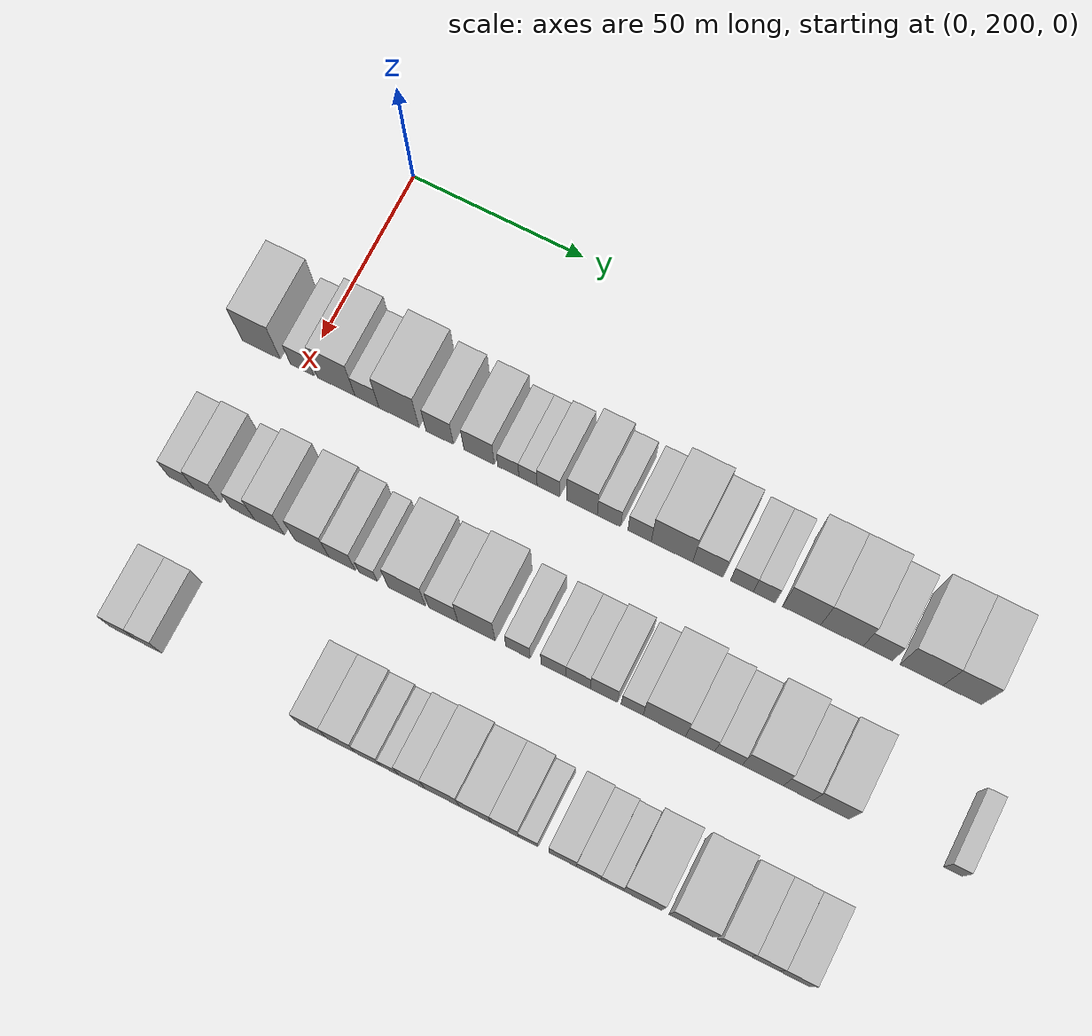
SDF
<sdf version="1.6">
 <world name="default">
  <model name="building_63">
   <static>1</static>
   <pose>50.0000 187.7218 0 0.000000 0.000000 0.000000</pose>
   <link name="link">
    <pose>0 0 12.00 0 0 0</pose>
    <collision name="collision"><geometry><box><size>20.0000 11.0932 24.0000</size></box></geometry></collision>
    <visual name="visual">
     <cast_shadows>0</cast_shadows>
     <geometry><box><size>20.0000 11.0932 24.0000</size></box></geometry>
     <material>
      <script>
       <uri>model://HANNAS_wall/materials/scripts</uri>
       <uri>model://HANNAS_wall/materials/textures</uri>
       <name>vrc/HANNAS_wall</name>
      </script>
     </material>
    </visual>
   </link>
  </model>
  <model name="building_64">
   <static>1</static>
   <pose>50.0000 199.6790 0 0.000000 0.000000 0.000000</pose>
   <link name="link">
    <pose>0 0 7.50 0 0 0</pose>
    <collision name="collision"><geometry><box><size>20.0000 6.8211 15.0000</size></box></geometry></collision>
    <visual name="visual">
     <cast_shadows>0</cast_shadows>
     <geometry><box><size>20.0000 6.8211 15.0000</size></box></geometry>
     <material>
      <script>
       <uri>model://HANNAS_wall/materials/scripts</uri>
       <uri>model://HANNAS_wall/materials/textures</uri>
       <name>vrc/HANNAS_wall</name>
      </script>
     </material>
    </visual>
   </link>
  </model>
  <model name="building_65">
   <static>1</static>
   <pose>50.0000 209.5486 0 0.000000 0.000000 0.000000</pose>
   <link name="link">
    <pose>0 0 12.00 0 0 0</pose>
    <collision name="collision"><geometry><box><size>20.0000 10.9182 24.0000</size></box></geometry></collision>
    <visual name="visual">
     <cast_shadows>0</cast_shadows>
     <geometry><box><size>20.0000 10.9182 24.0000</size></box></geometry>
     <material>
      <script>
       <uri>model://HANNAS_wall/materials/scripts</uri>
       <uri>model://HANNAS_wall/materials/textures</uri>
       <name>vrc/HANNAS_wall</name>
      </script>
     </material>
    </visual>
   </link>
  </model>
  <model name="building_66">
   <static>1</static>
   <pose>50.0000 218.4576 0 0.000000 0.000000 0.000000</pose>
   <link name="link">
    <pose>0 0 7.50 0 0 0</pose>
    <collision name="collision"><geometry><box><size>20.0000 6.8998 15.0000</size></box></geometry></collision>
    <visual name="visual">
     <cast_shadows>0</cast_shadows>
     <geometry><box><size>20.0000 6.8998 15.0000</size></box></geometry>
     <material>
      <script>
       <uri>model://HANNAS_wall/materials/scripts</uri>
       <uri>model://HANNAS_wall/materials/textures</uri>
       <name>vrc/HANNAS_wall</name>
      </script>
     </material>
    </visual>
   </link>
  </model>
  <model name="building_67">
   <static>1</static>
   <pose>50.0000 227.6946 0 0.000000 0.000000 0.000000</pose>
   <link name="link">
    <pose>0 0 12.00 0 0 0</pose>
    <collision name="collision"><geometry><box><size>20.0000 11.5742 24.0000</size></box></geometry></collision>
    <visual name="visual">
     <cast_shadows>0</cast_shadows>
     <geometry><box><size>20.0000 11.5742 24.0000</size></box></geometry>
     <material>
      <script>
       <uri>model://HANNAS_wall/materials/scripts</uri>
       <uri>model://HANNAS_wall/materials/textures</uri>
       <name>vrc/HANNAS_wall</name>
      </script>
     </material>
    </visual>
   </link>
  </model>
  <model name="building_68">
   <static>1</static>
   <pose>50.0000 239.4182 0 0.000000 0.000000 0.000000</pose>
   <link name="link">
    <pose>0 0 9.00 0 0 0</pose>
    <collision name="collision"><geometry><box><size>20.0000 7.8730 18.0000</size></box></geometry></collision>
    <visual name="visual">
     <cast_shadows>0</cast_shadows>
     <geometry><box><size>20.0000 7.8730 18.0000</size></box></geometry>
     <material>
      <script>
       <uri>model://HANNAS_wall/materials/scripts</uri>
       <uri>model://HANNAS_wall/materials/textures</uri>
       <name>vrc/HANNAS_wall</name>
      </script>
     </material>
    </visual>
   </link>
  </model>
  <model name="building_69">
   <static>1</static>
   <pose>50.0000 250.6943 0 0.000000 0.000000 0.000000</pose>
   <link name="link">
    <pose>0 0 9.00 0 0 0</pose>
    <collision name="collision"><geometry><box><size>20.0000 8.6792 18.0000</size></box></geometry></collision>
    <visual name="visual">
     <cast_shadows>0</cast_shadows>
     <geometry><box><size>20.0000 8.6792 18.0000</size></box></geometry>
     <material>
      <script>
       <uri>model://HANNAS_wall/materials/scripts</uri>
       <uri>model://HANNAS_wall/materials/textures</uri>
       <name>vrc/HANNAS_wall</name>
      </script>
     </material>
    </visual>
   </link>
  </model>
  <model name="building_70">
   <static>1</static>
   <pose>50.0000 259.0198 0 0.000000 0.000000 0.000000</pose>
   <link name="link">
    <pose>0 0 6.00 0 0 0</pose>
    <collision name="collision"><geometry><box><size>20.0000 5.9718 12.0000</size></box></geometry></collision>
    <visual name="visual">
     <cast_shadows>0</cast_shadows>
     <geometry><box><size>20.0000 5.9718 12.0000</size></box></geometry>
     <material>
      <script>
       <uri>model://HANNAS_wall/materials/scripts</uri>
       <uri>model://HANNAS_wall/materials/textures</uri>
       <name>vrc/HANNAS_wall</name>
      </script>
     </material>
    </visual>
   </link>
  </model>
  <model name="building_71">
   <static>1</static>
   <pose>50.0000 264.5907 0 0.000000 0.000000 0.000000</pose>
   <link name="link">
    <pose>0 0 6.00 0 0 0</pose>
    <collision name="collision"><geometry><box><size>20.0000 5.1698 12.0000</size></box></geometry></collision>
    <visual name="visual">
     <cast_shadows>0</cast_shadows>
     <geometry><box><size>20.0000 5.1698 12.0000</size></box></geometry>
     <material>
      <script>
       <uri>model://HANNAS_wall/materials/scripts</uri>
       <uri>model://HANNAS_wall/materials/textures</uri>
       <name>vrc/HANNAS_wall</name>
      </script>
     </material>
    </visual>
   </link>
  </model>
  <model name="building_72">
   <static>1</static>
   <pose>50.0000 270.3763 0 0.000000 0.000000 0.000000</pose>
   <link name="link">
    <pose>0 0 7.50 0 0 0</pose>
    <collision name="collision"><geometry><box><size>20.0000 6.4015 15.0000</size></box></geometry></collision>
    <visual name="visual">
     <cast_shadows>0</cast_shadows>
     <geometry><box><size>20.0000 6.4015 15.0000</size></box></geometry>
     <material>
      <script>
       <uri>model://HANNAS_wall/materials/scripts</uri>
       <uri>model://HANNAS_wall/materials/textures</uri>
       <name>vrc/HANNAS_wall</name>
      </script>
     </material>
    </visual>
   </link>
  </model>
  <model name="building_73">
   <static>1</static>
   <pose>50.0000 279.8585 0 0.000000 0.000000 0.000000</pose>
   <link name="link">
    <pose>0 0 10.50 0 0 0</pose>
    <collision name="collision"><geometry><box><size>20.0000 8.5629 21.0000</size></box></geometry></collision>
    <visual name="visual">
     <cast_shadows>0</cast_shadows>
     <geometry><box><size>20.0000 8.5629 21.0000</size></box></geometry>
     <material>
      <script>
       <uri>model://HANNAS_wall/materials/scripts</uri>
       <uri>model://HANNAS_wall/materials/textures</uri>
       <name>vrc/HANNAS_wall</name>
      </script>
     </material>
    </visual>
   </link>
  </model>
  <model name="building_74">
   <static>1</static>
   <pose>50.0000 287.4294 0 0.000000 0.000000 0.000000</pose>
   <link name="link">
    <pose>0 0 7.50 0 0 0</pose>
    <collision name="collision"><geometry><box><size>20.0000 6.5790 15.0000</size></box></geometry></collision>
    <visual name="visual">
     <cast_shadows>0</cast_shadows>
     <geometry><box><size>20.0000 6.5790 15.0000</size></box></geometry>
     <material>
      <script>
       <uri>model://HANNAS_wall/materials/scripts</uri>
       <uri>model://HANNAS_wall/materials/textures</uri>
       <name>vrc/HANNAS_wall</name>
      </script>
     </material>
    </visual>
   </link>
  </model>
  <model name="building_75">
   <static>1</static>
   <pose>50.0000 295.9694 0 0.000000 0.000000 0.000000</pose>
   <link name="link">
    <pose>0 0 7.50 0 0 0</pose>
    <collision name="collision"><geometry><box><size>20.0000 6.5010 15.0000</size></box></geometry></collision>
    <visual name="visual">
     <cast_shadows>0</cast_shadows>
     <geometry><box><size>20.0000 6.5010 15.0000</size></box></geometry>
     <material>
      <script>
       <uri>model://HANNAS_wall/materials/scripts</uri>
       <uri>model://HANNAS_wall/materials/textures</uri>
       <name>vrc/HANNAS_wall</name>
      </script>
     </material>
    </visual>
   </link>
  </model>
  <model name="building_76">
   <static>1</static>
   <pose>50.0000 305.0215 0 0.000000 0.000000 0.000000</pose>
   <link name="link">
    <pose>0 0 12.00 0 0 0</pose>
    <collision name="collision"><geometry><box><size>20.0000 11.6031 24.0000</size></box></geometry></collision>
    <visual name="visual">
     <cast_shadows>0</cast_shadows>
     <geometry><box><size>20.0000 11.6031 24.0000</size></box></geometry>
     <material>
      <script>
       <uri>model://HANNAS_wall/materials/scripts</uri>
       <uri>model://HANNAS_wall/materials/textures</uri>
       <name>vrc/HANNAS_wall</name>
      </script>
     </material>
    </visual>
   </link>
  </model>
  <model name="building_77">
   <static>1</static>
   <pose>50.0000 315.0398 0 0.000000 0.000000 0.000000</pose>
   <link name="link">
    <pose>0 0 9.00 0 0 0</pose>
    <collision name="collision"><geometry><box><size>20.0000 8.4336 18.0000</size></box></geometry></collision>
    <visual name="visual">
     <cast_shadows>0</cast_shadows>
     <geometry><box><size>20.0000 8.4336 18.0000</size></box></geometry>
     <material>
      <script>
       <uri>model://HANNAS_wall/materials/scripts</uri>
       <uri>model://HANNAS_wall/materials/textures</uri>
       <name>vrc/HANNAS_wall</name>
      </script>
     </material>
    </visual>
   </link>
  </model>
  <model name="building_78">
   <static>1</static>
   <pose>50.0000 324.4314 0 0.000000 0.000000 0.000000</pose>
   <link name="link">
    <pose>0 0 7.50 0 0 0</pose>
    <collision name="collision"><geometry><box><size>20.0000 6.3495 15.0000</size></box></geometry></collision>
    <visual name="visual">
     <cast_shadows>0</cast_shadows>
     <geometry><box><size>20.0000 6.3495 15.0000</size></box></geometry>
     <material>
      <script>
       <uri>model://HANNAS_wall/materials/scripts</uri>
       <uri>model://HANNAS_wall/materials/textures</uri>
       <name>vrc/HANNAS_wall</name>
      </script>
     </material>
    </visual>
   </link>
  </model>
  <model name="building_79">
   <static>1</static>
   <pose>50.0000 330.6228 0 0.000000 0.000000 0.000000</pose>
   <link name="link">
    <pose>0 0 7.50 0 0 0</pose>
    <collision name="collision"><geometry><box><size>20.0000 6.0332 15.0000</size></box></geometry></collision>
    <visual name="visual">
     <cast_shadows>0</cast_shadows>
     <geometry><box><size>20.0000 6.0332 15.0000</size></box></geometry>
     <material>
      <script>
       <uri>model://HANNAS_wall/materials/scripts</uri>
       <uri>model://HANNAS_wall/materials/textures</uri>
       <name>vrc/HANNAS_wall</name>
      </script>
     </material>
    </visual>
   </link>
  </model>
  <model name="building_80">
   <static>1</static>
   <pose>50.0000 340.8637 0 0.000000 0.000000 0.000000</pose>
   <link name="link">
    <pose>0 0 12.00 0 0 0</pose>
    <collision name="collision"><geometry><box><size>20.0000 10.4486 24.0000</size></box></geometry></collision>
    <visual name="visual">
     <cast_shadows>0</cast_shadows>
     <geometry><box><size>20.0000 10.4486 24.0000</size></box></geometry>
     <material>
      <script>
       <uri>model://HANNAS_wall/materials/scripts</uri>
       <uri>model://HANNAS_wall/materials/textures</uri>
       <name>vrc/HANNAS_wall</name>
      </script>
     </material>
    </visual>
   </link>
  </model>
  <model name="building_81">
   <static>1</static>
   <pose>50.0000 351.8807 0 0.000000 0.000000 0.000000</pose>
   <link name="link">
    <pose>0 0 12.00 0 0 0</pose>
    <collision name="collision"><geometry><box><size>20.0000 11.5853 24.0000</size></box></geometry></collision>
    <visual name="visual">
     <cast_shadows>0</cast_shadows>
     <geometry><box><size>20.0000 11.5853 24.0000</size></box></geometry>
     <material>
      <script>
       <uri>model://HANNAS_wall/materials/scripts</uri>
       <uri>model://HANNAS_wall/materials/textures</uri>
       <name>vrc/HANNAS_wall</name>
      </script>
     </material>
    </visual>
   </link>
  </model>
  <model name="building_82">
   <static>1</static>
   <pose>50.0000 361.7056 0 0.000000 0.000000 0.000000</pose>
   <link name="link">
    <pose>0 0 9.00 0 0 0</pose>
    <collision name="collision"><geometry><box><size>20.0000 8.0645 18.0000</size></box></geometry></collision>
    <visual name="visual">
     <cast_shadows>0</cast_shadows>
     <geometry><box><size>20.0000 8.0645 18.0000</size></box></geometry>
     <material>
      <script>
       <uri>model://HANNAS_wall/materials/scripts</uri>
       <uri>model://HANNAS_wall/materials/textures</uri>
       <name>vrc/HANNAS_wall</name>
      </script>
     </material>
    </visual>
   </link>
  </model>
  <model name="building_83">
   <static>1</static>
   <pose>50.0000 373.5351 0 0.000000 0.000000 0.000000</pose>
   <link name="link">
    <pose>0 0 12.00 0 0 0</pose>
    <collision name="collision"><geometry><box><size>20.0000 11.5946 24.0000</size></box></geometry></collision>
    <visual name="visual">
     <cast_shadows>0</cast_shadows>
     <geometry><box><size>20.0000 11.5946 24.0000</size></box></geometry>
     <material>
      <script>
       <uri>model://HANNAS_wall/materials/scripts</uri>
       <uri>model://HANNAS_wall/materials/textures</uri>
       <name>vrc/HANNAS_wall</name>
      </script>
     </material>
    </visual>
   </link>
  </model>
  <model name="building_84">
   <static>1</static>
   <pose>50.0000 384.5345 0 0.000000 0.000000 0.000000</pose>
   <link name="link">
    <pose>0 0 12.00 0 0 0</pose>
    <collision name="collision"><geometry><box><size>20.0000 10.4040 24.0000</size></box></geometry></collision>
    <visual name="visual">
     <cast_shadows>0</cast_shadows>
     <geometry><box><size>20.0000 10.4040 24.0000</size></box></geometry>
     <material>
      <script>
       <uri>model://HANNAS_wall/materials/scripts</uri>
       <uri>model://HANNAS_wall/materials/textures</uri>
       <name>vrc/HANNAS_wall</name>
      </script>
     </material>
    </visual>
   </link>
  </model>
  <model name="building_147">
   <static>1</static>
   <pose>90.0000 186.9736 0 0.000000 0.000000 0.000000</pose>
   <link name="link">
    <pose>0 0 7.50 0 0 0</pose>
    <collision name="collision"><geometry><box><size>20.0000 7.4780 15.0000</size></box></geometry></collision>
    <visual name="visual">
     <cast_shadows>0</cast_shadows>
     <geometry><box><size>20.0000 7.4780 15.0000</size></box></geometry>
     <material>
      <script>
       <uri>model://HANNAS_wall/materials/scripts</uri>
       <uri>model://HANNAS_wall/materials/textures</uri>
       <name>vrc/HANNAS_wall</name>
      </script>
     </material>
    </visual>
   </link>
  </model>
  <model name="building_148">
   <static>1</static>
   <pose>90.0000 194.4667 0 0.000000 0.000000 0.000000</pose>
   <link name="link">
    <pose>0 0 9.00 0 0 0</pose>
    <collision name="collision"><geometry><box><size>20.0000 7.5083 18.0000</size></box></geometry></collision>
    <visual name="visual">
     <cast_shadows>0</cast_shadows>
     <geometry><box><size>20.0000 7.5083 18.0000</size></box></geometry>
     <material>
      <script>
       <uri>model://HANNAS_wall/materials/scripts</uri>
       <uri>model://HANNAS_wall/materials/textures</uri>
       <name>vrc/HANNAS_wall</name>
      </script>
     </material>
    </visual>
   </link>
  </model>
  <model name="building_149">
   <static>1</static>
   <pose>90.0000 204.6397 0 0.000000 0.000000 0.000000</pose>
   <link name="link">
    <pose>0 0 7.50 0 0 0</pose>
    <collision name="collision"><geometry><box><size>20.0000 6.8376 15.0000</size></box></geometry></collision>
    <visual name="visual">
     <cast_shadows>0</cast_shadows>
     <geometry><box><size>20.0000 6.8376 15.0000</size></box></geometry>
     <material>
      <script>
       <uri>model://HANNAS_wall/materials/scripts</uri>
       <uri>model://HANNAS_wall/materials/textures</uri>
       <name>vrc/HANNAS_wall</name>
      </script>
     </material>
    </visual>
   </link>
  </model>
  <model name="building_150">
   <static>1</static>
   <pose>90.0000 212.3076 0 0.000000 0.000000 0.000000</pose>
   <link name="link">
    <pose>0 0 10.50 0 0 0</pose>
    <collision name="collision"><geometry><box><size>20.0000 8.4983 21.0000</size></box></geometry></collision>
    <visual name="visual">
     <cast_shadows>0</cast_shadows>
     <geometry><box><size>20.0000 8.4983 21.0000</size></box></geometry>
     <material>
      <script>
       <uri>model://HANNAS_wall/materials/scripts</uri>
       <uri>model://HANNAS_wall/materials/textures</uri>
       <name>vrc/HANNAS_wall</name>
      </script>
     </material>
    </visual>
   </link>
  </model>
  <model name="building_151">
   <static>1</static>
   <pose>90.0000 224.4110 0 0.000000 0.000000 0.000000</pose>
   <link name="link">
    <pose>0 0 10.50 0 0 0</pose>
    <collision name="collision"><geometry><box><size>20.0000 9.7085 21.0000</size></box></geometry></collision>
    <visual name="visual">
     <cast_shadows>0</cast_shadows>
     <geometry><box><size>20.0000 9.7085 21.0000</size></box></geometry>
     <material>
      <script>
       <uri>model://HANNAS_wall/materials/scripts</uri>
       <uri>model://HANNAS_wall/materials/textures</uri>
       <name>vrc/HANNAS_wall</name>
      </script>
     </material>
    </visual>
   </link>
  </model>
  <model name="building_152">
   <static>1</static>
   <pose>90.0000 233.0318 0 0.000000 0.000000 0.000000</pose>
   <link name="link">
    <pose>0 0 9.00 0 0 0</pose>
    <collision name="collision"><geometry><box><size>20.0000 7.5330 18.0000</size></box></geometry></collision>
    <visual name="visual">
     <cast_shadows>0</cast_shadows>
     <geometry><box><size>20.0000 7.5330 18.0000</size></box></geometry>
     <material>
      <script>
       <uri>model://HANNAS_wall/materials/scripts</uri>
       <uri>model://HANNAS_wall/materials/textures</uri>
       <name>vrc/HANNAS_wall</name>
      </script>
     </material>
    </visual>
   </link>
  </model>
  <model name="building_153">
   <static>1</static>
   <pose>90.0000 240.4001 0 0.000000 0.000000 0.000000</pose>
   <link name="link">
    <pose>0 0 6.00 0 0 0</pose>
    <collision name="collision"><geometry><box><size>20.0000 5.2038 12.0000</size></box></geometry></collision>
    <visual name="visual">
     <cast_shadows>0</cast_shadows>
     <geometry><box><size>20.0000 5.2038 12.0000</size></box></geometry>
     <material>
      <script>
       <uri>model://HANNAS_wall/materials/scripts</uri>
       <uri>model://HANNAS_wall/materials/textures</uri>
       <name>vrc/HANNAS_wall</name>
      </script>
     </material>
    </visual>
   </link>
  </model>
  <model name="building_154">
   <static>1</static>
   <pose>90.0000 251.2322 0 0.000000 0.000000 0.000000</pose>
   <link name="link">
    <pose>0 0 10.50 0 0 0</pose>
    <collision name="collision"><geometry><box><size>20.0000 10.4604 21.0000</size></box></geometry></collision>
    <visual name="visual">
     <cast_shadows>0</cast_shadows>
     <geometry><box><size>20.0000 10.4604 21.0000</size></box></geometry>
     <material>
      <script>
       <uri>model://HANNAS_wall/materials/scripts</uri>
       <uri>model://HANNAS_wall/materials/textures</uri>
       <name>vrc/HANNAS_wall</name>
      </script>
     </material>
    </visual>
   </link>
  </model>
  <model name="building_155">
   <static>1</static>
   <pose>90.0000 261.5144 0 0.000000 0.000000 0.000000</pose>
   <link name="link">
    <pose>0 0 9.00 0 0 0</pose>
    <collision name="collision"><geometry><box><size>20.0000 8.1039 18.0000</size></box></geometry></collision>
    <visual name="visual">
     <cast_shadows>0</cast_shadows>
     <geometry><box><size>20.0000 8.1039 18.0000</size></box></geometry>
     <material>
      <script>
       <uri>model://HANNAS_wall/materials/scripts</uri>
       <uri>model://HANNAS_wall/materials/textures</uri>
       <name>vrc/HANNAS_wall</name>
      </script>
     </material>
    </visual>
   </link>
  </model>
  <model name="building_156">
   <static>1</static>
   <pose>90.0000 270.7824 0 0.000000 0.000000 0.000000</pose>
   <link name="link">
    <pose>0 0 12.00 0 0 0</pose>
    <collision name="collision"><geometry><box><size>20.0000 10.4322 24.0000</size></box></geometry></collision>
    <visual name="visual">
     <cast_shadows>0</cast_shadows>
     <geometry><box><size>20.0000 10.4322 24.0000</size></box></geometry>
     <material>
      <script>
       <uri>model://HANNAS_wall/materials/scripts</uri>
       <uri>model://HANNAS_wall/materials/textures</uri>
       <name>vrc/HANNAS_wall</name>
      </script>
     </material>
    </visual>
   </link>
  </model>
  <model name="building_157">
   <static>1</static>
   <pose>90.0000 282.3640 0 0.000000 0.000000 0.000000</pose>
   <link name="link">
    <pose>0 0 7.50 0 0 0</pose>
    <collision name="collision"><geometry><box><size>20.0000 6.7310 15.0000</size></box></geometry></collision>
    <visual name="visual">
     <cast_shadows>0</cast_shadows>
     <geometry><box><size>20.0000 6.7310 15.0000</size></box></geometry>
     <material>
      <script>
       <uri>model://HANNAS_wall/materials/scripts</uri>
       <uri>model://HANNAS_wall/materials/textures</uri>
       <name>vrc/HANNAS_wall</name>
      </script>
     </material>
    </visual>
   </link>
  </model>
  <model name="building_158">
   <static>1</static>
   <pose>90.0000 292.1586 0 0.000000 0.000000 0.000000</pose>
   <link name="link">
    <pose>0 0 7.50 0 0 0</pose>
    <collision name="collision"><geometry><box><size>20.0000 6.8582 15.0000</size></box></geometry></collision>
    <visual name="visual">
     <cast_shadows>0</cast_shadows>
     <geometry><box><size>20.0000 6.8582 15.0000</size></box></geometry>
     <material>
      <script>
       <uri>model://HANNAS_wall/materials/scripts</uri>
       <uri>model://HANNAS_wall/materials/textures</uri>
       <name>vrc/HANNAS_wall</name>
      </script>
     </material>
    </visual>
   </link>
  </model>
  <model name="building_159">
   <static>1</static>
   <pose>90.0000 298.9471 0 0.000000 0.000000 0.000000</pose>
   <link name="link">
    <pose>0 0 7.50 0 0 0</pose>
    <collision name="collision"><geometry><box><size>20.0000 6.7189 15.0000</size></box></geometry></collision>
    <visual name="visual">
     <cast_shadows>0</cast_shadows>
     <geometry><box><size>20.0000 6.7189 15.0000</size></box></geometry>
     <material>
      <script>
       <uri>model://HANNAS_wall/materials/scripts</uri>
       <uri>model://HANNAS_wall/materials/textures</uri>
       <name>vrc/HANNAS_wall</name>
      </script>
     </material>
    </visual>
   </link>
  </model>
  <model name="building_160">
   <static>1</static>
   <pose>90.0000 306.0216 0 0.000000 0.000000 0.000000</pose>
   <link name="link">
    <pose>0 0 9.00 0 0 0</pose>
    <collision name="collision"><geometry><box><size>20.0000 7.4301 18.0000</size></box></geometry></collision>
    <visual name="visual">
     <cast_shadows>0</cast_shadows>
     <geometry><box><size>20.0000 7.4301 18.0000</size></box></geometry>
     <material>
      <script>
       <uri>model://HANNAS_wall/materials/scripts</uri>
       <uri>model://HANNAS_wall/materials/textures</uri>
       <name>vrc/HANNAS_wall</name>
      </script>
     </material>
    </visual>
   </link>
  </model>
  <model name="building_161">
   <static>1</static>
   <pose>90.0000 313.7547 0 0.000000 0.000000 0.000000</pose>
   <link name="link">
    <pose>0 0 7.50 0 0 0</pose>
    <collision name="collision"><geometry><box><size>20.0000 6.0361 15.0000</size></box></geometry></collision>
    <visual name="visual">
     <cast_shadows>0</cast_shadows>
     <geometry><box><size>20.0000 6.0361 15.0000</size></box></geometry>
     <material>
      <script>
       <uri>model://HANNAS_wall/materials/scripts</uri>
       <uri>model://HANNAS_wall/materials/textures</uri>
       <name>vrc/HANNAS_wall</name>
      </script>
     </material>
    </visual>
   </link>
  </model>
  <model name="building_162">
   <static>1</static>
   <pose>90.0000 322.5582 0 0.000000 0.000000 0.000000</pose>
   <link name="link">
    <pose>0 0 12.00 0 0 0</pose>
    <collision name="collision"><geometry><box><size>20.0000 11.5709 24.0000</size></box></geometry></collision>
    <visual name="visual">
     <cast_shadows>0</cast_shadows>
     <geometry><box><size>20.0000 11.5709 24.0000</size></box></geometry>
     <material>
      <script>
       <uri>model://HANNAS_wall/materials/scripts</uri>
       <uri>model://HANNAS_wall/materials/textures</uri>
       <name>vrc/HANNAS_wall</name>
      </script>
     </material>
    </visual>
   </link>
  </model>
  <model name="building_163">
   <static>1</static>
   <pose>90.0000 332.3034 0 0.000000 0.000000 0.000000</pose>
   <link name="link">
    <pose>0 0 9.00 0 0 0</pose>
    <collision name="collision"><geometry><box><size>20.0000 7.9195 18.0000</size></box></geometry></collision>
    <visual name="visual">
     <cast_shadows>0</cast_shadows>
     <geometry><box><size>20.0000 7.9195 18.0000</size></box></geometry>
     <material>
      <script>
       <uri>model://HANNAS_wall/materials/scripts</uri>
       <uri>model://HANNAS_wall/materials/textures</uri>
       <name>vrc/HANNAS_wall</name>
      </script>
     </material>
    </visual>
   </link>
  </model>
  <model name="building_164">
   <static>1</static>
   <pose>90.0000 339.9922 0 0.000000 0.000000 0.000000</pose>
   <link name="link">
    <pose>0 0 7.50 0 0 0</pose>
    <collision name="collision"><geometry><box><size>20.0000 7.4581 15.0000</size></box></geometry></collision>
    <visual name="visual">
     <cast_shadows>0</cast_shadows>
     <geometry><box><size>20.0000 7.4581 15.0000</size></box></geometry>
     <material>
      <script>
       <uri>model://HANNAS_wall/materials/scripts</uri>
       <uri>model://HANNAS_wall/materials/textures</uri>
       <name>vrc/HANNAS_wall</name>
      </script>
     </material>
    </visual>
   </link>
  </model>
  <model name="building_165">
   <static>1</static>
   <pose>90.0000 349.2752 0 0.000000 0.000000 0.000000</pose>
   <link name="link">
    <pose>0 0 12.00 0 0 0</pose>
    <collision name="collision"><geometry><box><size>20.0000 11.1080 24.0000</size></box></geometry></collision>
    <visual name="visual">
     <cast_shadows>0</cast_shadows>
     <geometry><box><size>20.0000 11.1080 24.0000</size></box></geometry>
     <material>
      <script>
       <uri>model://HANNAS_wall/materials/scripts</uri>
       <uri>model://HANNAS_wall/materials/textures</uri>
       <name>vrc/HANNAS_wall</name>
      </script>
     </material>
    </visual>
   </link>
  </model>
  <model name="building_166">
   <static>1</static>
   <pose>90.0000 358.7979 0 0.000000 0.000000 0.000000</pose>
   <link name="link">
    <pose>0 0 9.00 0 0 0</pose>
    <collision name="collision"><geometry><box><size>20.0000 7.9373 18.0000</size></box></geometry></collision>
    <visual name="visual">
     <cast_shadows>0</cast_shadows>
     <geometry><box><size>20.0000 7.9373 18.0000</size></box></geometry>
     <material>
      <script>
       <uri>model://HANNAS_wall/materials/scripts</uri>
       <uri>model://HANNAS_wall/materials/textures</uri>
       <name>vrc/HANNAS_wall</name>
      </script>
     </material>
    </visual>
   </link>
  </model>
  <model name="building_167">
   <static>1</static>
   <pose>90.0000 367.6233 0 0.000000 0.000000 0.000000</pose>
   <link name="link">
    <pose>0 0 10.50 0 0 0</pose>
    <collision name="collision"><geometry><box><size>20.0000 9.7135 21.0000</size></box></geometry></collision>
    <visual name="visual">
     <cast_shadows>0</cast_shadows>
     <geometry><box><size>20.0000 9.7135 21.0000</size></box></geometry>
     <material>
      <script>
       <uri>model://HANNAS_wall/materials/scripts</uri>
       <uri>model://HANNAS_wall/materials/textures</uri>
       <name>vrc/HANNAS_wall</name>
      </script>
     </material>
    </visual>
   </link>
  </model>
  <model name="building_168">
   <static>1</static>
   <pose>90.0000 400.0322 0 0.000000 0.000000 0.000000</pose>
   <link name="link">
    <pose>0 0 6.00 0 0 0</pose>
    <collision name="collision"><geometry><box><size>20.0000 5.0348 12.0000</size></box></geometry></collision>
    <visual name="visual">
     <cast_shadows>0</cast_shadows>
     <geometry><box><size>20.0000 5.0348 12.0000</size></box></geometry>
     <material>
      <script>
       <uri>model://HANNAS_wall/materials/scripts</uri>
       <uri>model://HANNAS_wall/materials/textures</uri>
       <name>vrc/HANNAS_wall</name>
      </script>
     </material>
    </visual>
   </link>
  </model>
  <model name="building_234">
   <static>1</static>
   <pose>130.0000 193.2041 0 0.000000 0.000000 0.000000</pose>
   <link name="link">
    <pose>0 0 7.50 0 0 0</pose>
    <collision name="collision"><geometry><box><size>20.0000 7.3306 15.0000</size></box></geometry></collision>
    <visual name="visual">
     <cast_shadows>0</cast_shadows>
     <geometry><box><size>20.0000 7.3306 15.0000</size></box></geometry>
     <material>
      <script>
       <uri>model://HANNAS_wall/materials/scripts</uri>
       <uri>model://HANNAS_wall/materials/textures</uri>
       <name>vrc/HANNAS_wall</name>
      </script>
     </material>
    </visual>
   </link>
  </model>
  <model name="building_235">
   <static>1</static>
   <pose>130.0000 200.4515 0 0.000000 0.000000 0.000000</pose>
   <link name="link">
    <pose>0 0 7.50 0 0 0</pose>
    <collision name="collision"><geometry><box><size>20.0000 7.1641 15.0000</size></box></geometry></collision>
    <visual name="visual">
     <cast_shadows>0</cast_shadows>
     <geometry><box><size>20.0000 7.1641 15.0000</size></box></geometry>
     <material>
      <script>
       <uri>model://HANNAS_wall/materials/scripts</uri>
       <uri>model://HANNAS_wall/materials/textures</uri>
       <name>vrc/HANNAS_wall</name>
      </script>
     </material>
    </visual>
   </link>
  </model>
  <model name="building_236">
   <static>1</static>
   <pose>130.0000 246.5125 0 0.000000 0.000000 0.000000</pose>
   <link name="link">
    <pose>0 0 9.00 0 0 0</pose>
    <collision name="collision"><geometry><box><size>20.0000 7.6526 18.0000</size></box></geometry></collision>
    <visual name="visual">
     <cast_shadows>0</cast_shadows>
     <geometry><box><size>20.0000 7.6526 18.0000</size></box></geometry>
     <material>
      <script>
       <uri>model://HANNAS_wall/materials/scripts</uri>
       <uri>model://HANNAS_wall/materials/textures</uri>
       <name>vrc/HANNAS_wall</name>
      </script>
     </material>
    </visual>
   </link>
  </model>
  <model name="building_237">
   <static>1</static>
   <pose>130.0000 254.5104 0 0.000000 0.000000 0.000000</pose>
   <link name="link">
    <pose>0 0 9.00 0 0 0</pose>
    <collision name="collision"><geometry><box><size>20.0000 8.3433 18.0000</size></box></geometry></collision>
    <visual name="visual">
     <cast_shadows>0</cast_shadows>
     <geometry><box><size>20.0000 8.3433 18.0000</size></box></geometry>
     <material>
      <script>
       <uri>model://HANNAS_wall/materials/scripts</uri>
       <uri>model://HANNAS_wall/materials/textures</uri>
       <name>vrc/HANNAS_wall</name>
      </script>
     </material>
    </visual>
   </link>
  </model>
  <model name="building_238">
   <static>1</static>
   <pose>130.0000 262.0339 0 0.000000 0.000000 0.000000</pose>
   <link name="link">
    <pose>0 0 7.50 0 0 0</pose>
    <collision name="collision"><geometry><box><size>20.0000 6.7037 15.0000</size></box></geometry></collision>
    <visual name="visual">
     <cast_shadows>0</cast_shadows>
     <geometry><box><size>20.0000 6.7037 15.0000</size></box></geometry>
     <material>
      <script>
       <uri>model://HANNAS_wall/materials/scripts</uri>
       <uri>model://HANNAS_wall/materials/textures</uri>
       <name>vrc/HANNAS_wall</name>
      </script>
     </material>
    </visual>
   </link>
  </model>
  <model name="building_239">
   <static>1</static>
   <pose>130.0000 267.8284 0 0.000000 0.000000 0.000000</pose>
   <link name="link">
    <pose>0 0 6.00 0 0 0</pose>
    <collision name="collision"><geometry><box><size>20.0000 4.8853 12.0000</size></box></geometry></collision>
    <visual name="visual">
     <cast_shadows>0</cast_shadows>
     <geometry><box><size>20.0000 4.8853 12.0000</size></box></geometry>
     <material>
      <script>
       <uri>model://HANNAS_wall/materials/scripts</uri>
       <uri>model://HANNAS_wall/materials/textures</uri>
       <name>vrc/HANNAS_wall</name>
      </script>
     </material>
    </visual>
   </link>
  </model>
  <model name="building_240">
   <static>1</static>
   <pose>130.0000 273.9155 0 0.000000 0.000000 0.000000</pose>
   <link name="link">
    <pose>0 0 9.00 0 0 0</pose>
    <collision name="collision"><geometry><box><size>20.0000 7.2888 18.0000</size></box></geometry></collision>
    <visual name="visual">
     <cast_shadows>0</cast_shadows>
     <geometry><box><size>20.0000 7.2888 18.0000</size></box></geometry>
     <material>
      <script>
       <uri>model://HANNAS_wall/materials/scripts</uri>
       <uri>model://HANNAS_wall/materials/textures</uri>
       <name>vrc/HANNAS_wall</name>
      </script>
     </material>
    </visual>
   </link>
  </model>
  <model name="building_241">
   <static>1</static>
   <pose>130.0000 282.2737 0 0.000000 0.000000 0.000000</pose>
   <link name="link">
    <pose>0 0 10.50 0 0 0</pose>
    <collision name="collision"><geometry><box><size>20.0000 9.4276 21.0000</size></box></geometry></collision>
    <visual name="visual">
     <cast_shadows>0</cast_shadows>
     <geometry><box><size>20.0000 9.4276 21.0000</size></box></geometry>
     <material>
      <script>
       <uri>model://HANNAS_wall/materials/scripts</uri>
       <uri>model://HANNAS_wall/materials/textures</uri>
       <name>vrc/HANNAS_wall</name>
      </script>
     </material>
    </visual>
   </link>
  </model>
  <model name="building_242">
   <static>1</static>
   <pose>130.0000 291.3196 0 0.000000 0.000000 0.000000</pose>
   <link name="link">
    <pose>0 0 9.00 0 0 0</pose>
    <collision name="collision"><geometry><box><size>20.0000 8.6643 18.0000</size></box></geometry></collision>
    <visual name="visual">
     <cast_shadows>0</cast_shadows>
     <geometry><box><size>20.0000 8.6643 18.0000</size></box></geometry>
     <material>
      <script>
       <uri>model://HANNAS_wall/materials/scripts</uri>
       <uri>model://HANNAS_wall/materials/textures</uri>
       <name>vrc/HANNAS_wall</name>
      </script>
     </material>
    </visual>
   </link>
  </model>
  <model name="building_243">
   <static>1</static>
   <pose>130.0000 299.4066 0 0.000000 0.000000 0.000000</pose>
   <link name="link">
    <pose>0 0 9.00 0 0 0</pose>
    <collision name="collision"><geometry><box><size>20.0000 7.5097 18.0000</size></box></geometry></collision>
    <visual name="visual">
     <cast_shadows>0</cast_shadows>
     <geometry><box><size>20.0000 7.5097 18.0000</size></box></geometry>
     <material>
      <script>
       <uri>model://HANNAS_wall/materials/scripts</uri>
       <uri>model://HANNAS_wall/materials/textures</uri>
       <name>vrc/HANNAS_wall</name>
      </script>
     </material>
    </visual>
   </link>
  </model>
  <model name="building_244">
   <static>1</static>
   <pose>130.0000 305.7498 0 0.000000 0.000000 0.000000</pose>
   <link name="link">
    <pose>0 0 6.00 0 0 0</pose>
    <collision name="collision"><geometry><box><size>20.0000 5.1767 12.0000</size></box></geometry></collision>
    <visual name="visual">
     <cast_shadows>0</cast_shadows>
     <geometry><box><size>20.0000 5.1767 12.0000</size></box></geometry>
     <material>
      <script>
       <uri>model://HANNAS_wall/materials/scripts</uri>
       <uri>model://HANNAS_wall/materials/textures</uri>
       <name>vrc/HANNAS_wall</name>
      </script>
     </material>
    </visual>
   </link>
  </model>
  <model name="building_245">
   <static>1</static>
   <pose>130.0000 315.0465 0 0.000000 0.000000 0.000000</pose>
   <link name="link">
    <pose>0 0 9.00 0 0 0</pose>
    <collision name="collision"><geometry><box><size>20.0000 7.4167 18.0000</size></box></geometry></collision>
    <visual name="visual">
     <cast_shadows>0</cast_shadows>
     <geometry><box><size>20.0000 7.4167 18.0000</size></box></geometry>
     <material>
      <script>
       <uri>model://HANNAS_wall/materials/scripts</uri>
       <uri>model://HANNAS_wall/materials/textures</uri>
       <name>vrc/HANNAS_wall</name>
      </script>
     </material>
    </visual>
   </link>
  </model>
  <model name="building_246">
   <static>1</static>
   <pose>130.0000 322.0457 0 0.000000 0.000000 0.000000</pose>
   <link name="link">
    <pose>0 0 7.50 0 0 0</pose>
    <collision name="collision"><geometry><box><size>20.0000 6.5817 15.0000</size></box></geometry></collision>
    <visual name="visual">
     <cast_shadows>0</cast_shadows>
     <geometry><box><size>20.0000 6.5817 15.0000</size></box></geometry>
     <material>
      <script>
       <uri>model://HANNAS_wall/materials/scripts</uri>
       <uri>model://HANNAS_wall/materials/textures</uri>
       <name>vrc/HANNAS_wall</name>
      </script>
     </material>
    </visual>
   </link>
  </model>
  <model name="building_247">
   <static>1</static>
   <pose>130.0000 328.3174 0 0.000000 0.000000 0.000000</pose>
   <link name="link">
    <pose>0 0 6.00 0 0 0</pose>
    <collision name="collision"><geometry><box><size>20.0000 5.9616 12.0000</size></box></geometry></collision>
    <visual name="visual">
     <cast_shadows>0</cast_shadows>
     <geometry><box><size>20.0000 5.9616 12.0000</size></box></geometry>
     <material>
      <script>
       <uri>model://HANNAS_wall/materials/scripts</uri>
       <uri>model://HANNAS_wall/materials/textures</uri>
       <name>vrc/HANNAS_wall</name>
      </script>
     </material>
    </visual>
   </link>
  </model>
  <model name="building_248">
   <static>1</static>
   <pose>130.0000 336.4068 0 0.000000 0.000000 0.000000</pose>
   <link name="link">
    <pose>0 0 12.00 0 0 0</pose>
    <collision name="collision"><geometry><box><size>20.0000 10.2172 24.0000</size></box></geometry></collision>
    <visual name="visual">
     <cast_shadows>0</cast_shadows>
     <geometry><box><size>20.0000 10.2172 24.0000</size></box></geometry>
     <material>
      <script>
       <uri>model://HANNAS_wall/materials/scripts</uri>
       <uri>model://HANNAS_wall/materials/textures</uri>
       <name>vrc/HANNAS_wall</name>
      </script>
     </material>
    </visual>
   </link>
  </model>
  <model name="building_249">
   <static>1</static>
   <pose>130.0000 349.4508 0 0.000000 0.000000 0.000000</pose>
   <link name="link">
    <pose>0 0 12.00 0 0 0</pose>
    <collision name="collision"><geometry><box><size>20.0000 11.8708 24.0000</size></box></geometry></collision>
    <visual name="visual">
     <cast_shadows>0</cast_shadows>
     <geometry><box><size>20.0000 11.8708 24.0000</size></box></geometry>
     <material>
      <script>
       <uri>model://HANNAS_wall/materials/scripts</uri>
       <uri>model://HANNAS_wall/materials/textures</uri>
       <name>vrc/HANNAS_wall</name>
      </script>
     </material>
    </visual>
   </link>
  </model>
  <model name="building_250">
   <static>1</static>
   <pose>130.0000 360.7252 0 0.000000 0.000000 0.000000</pose>
   <link name="link">
    <pose>0 0 9.00 0 0 0</pose>
    <collision name="collision"><geometry><box><size>20.0000 8.6781 18.0000</size></box></geometry></collision>
    <visual name="visual">
     <cast_shadows>0</cast_shadows>
     <geometry><box><size>20.0000 8.6781 18.0000</size></box></geometry>
     <material>
      <script>
       <uri>model://HANNAS_wall/materials/scripts</uri>
       <uri>model://HANNAS_wall/materials/textures</uri>
       <name>vrc/HANNAS_wall</name>
      </script>
     </material>
    </visual>
   </link>
  </model>
  <model name="building_251">
   <static>1</static>
   <pose>130.0000 368.8057 0 0.000000 0.000000 0.000000</pose>
   <link name="link">
    <pose>0 0 9.00 0 0 0</pose>
    <collision name="collision"><geometry><box><size>20.0000 7.4829 18.0000</size></box></geometry></collision>
    <visual name="visual">
     <cast_shadows>0</cast_shadows>
     <geometry><box><size>20.0000 7.4829 18.0000</size></box></geometry>
     <material>
      <script>
       <uri>model://HANNAS_wall/materials/scripts</uri>
       <uri>model://HANNAS_wall/materials/textures</uri>
       <name>vrc/HANNAS_wall</name>
      </script>
     </material>
    </visual>
   </link>
  </model>
  <model name="building_252">
   <static>1</static>
   <pose>130.0000 376.5164 0 0.000000 0.000000 0.000000</pose>
   <link name="link">
    <pose>0 0 9.00 0 0 0</pose>
    <collision name="collision"><geometry><box><size>20.0000 7.9384 18.0000</size></box></geometry></collision>
    <visual name="visual">
     <cast_shadows>0</cast_shadows>
     <geometry><box><size>20.0000 7.9384 18.0000</size></box></geometry>
     <material>
      <script>
       <uri>model://HANNAS_wall/materials/scripts</uri>
       <uri>model://HANNAS_wall/materials/textures</uri>
       <name>vrc/HANNAS_wall</name>
      </script>
     </material>
    </visual>
   </link>
  </model>
 </world>
</sdf>
